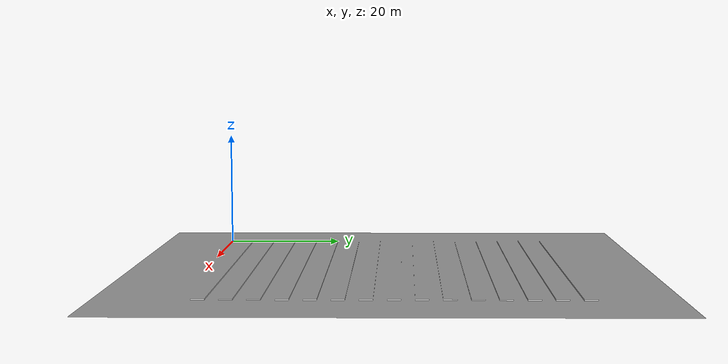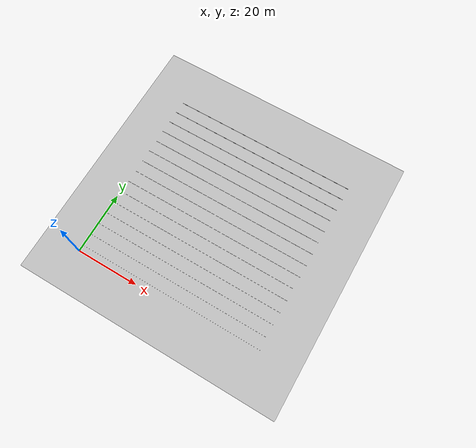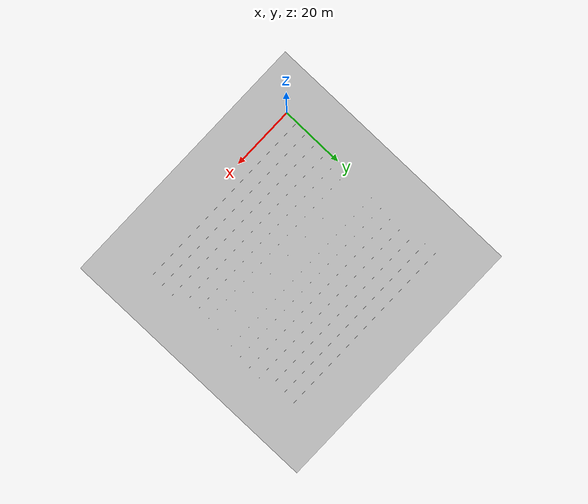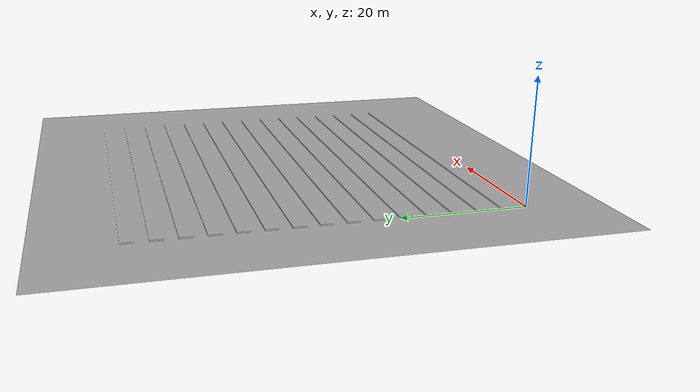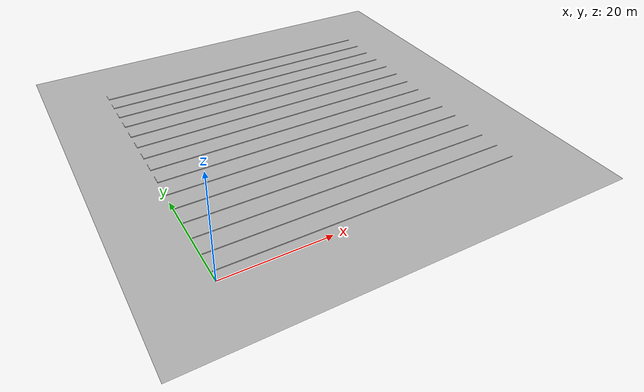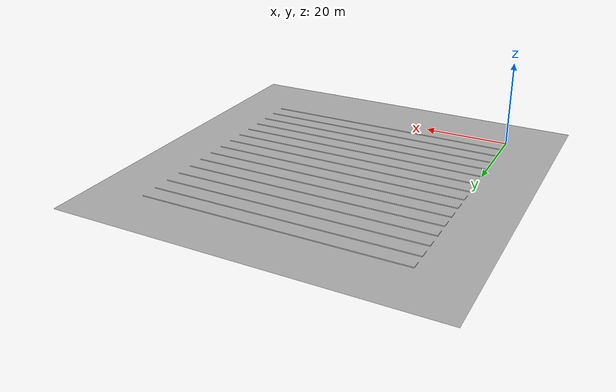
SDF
<?xml version="1.0"?>
<sdf version="1.6">
    <model name="empty_field">
      <static>true</static>
      <link name="empty_field">
        <visual name="visual">
          <geometry>
            <mesh><uri>model://empty_field/meshes/empty_field.obj</uri></mesh>
          </geometry>
        </visual>
        <collision name="collision">
          <geometry>
            <mesh><uri>model://empty_field/meshes/empty_field.obj</uri></mesh>
          </geometry>
        </collision>
      </link>
    </model>
</sdf>
